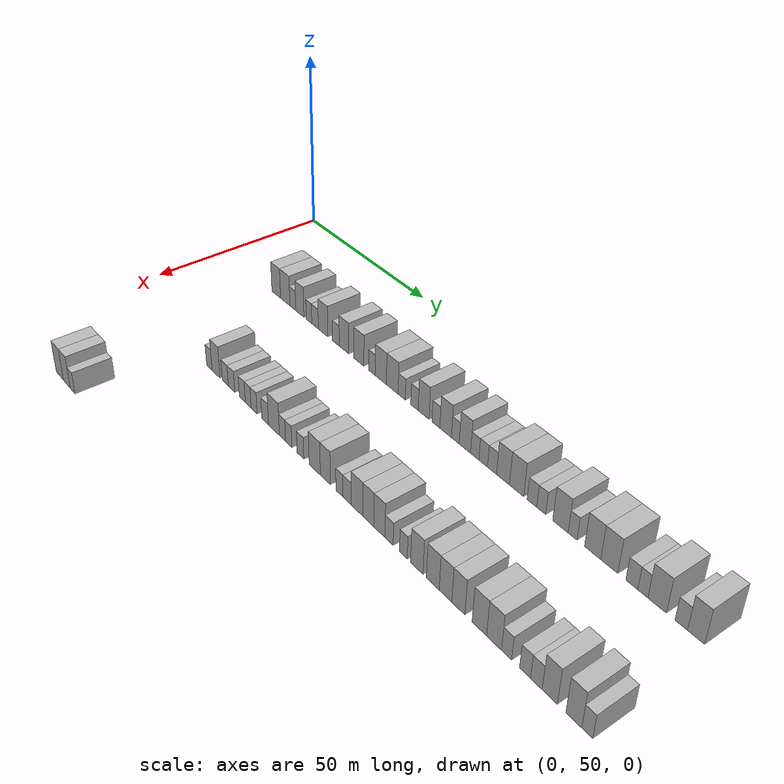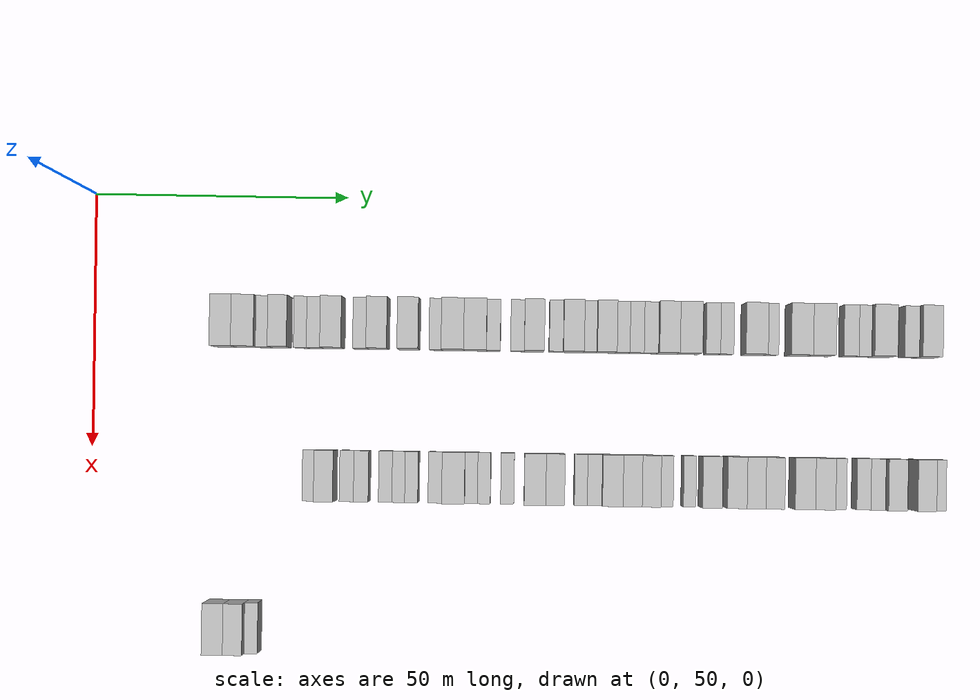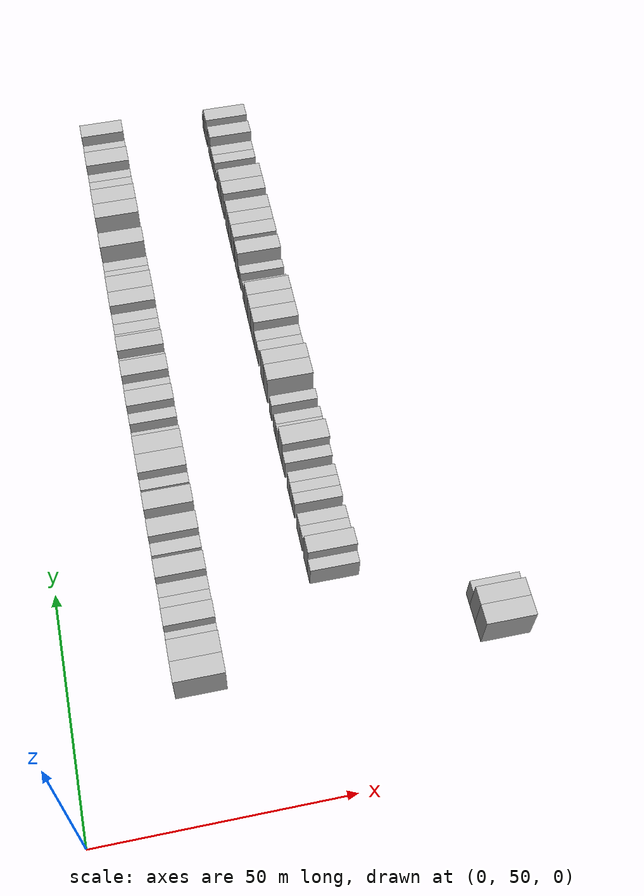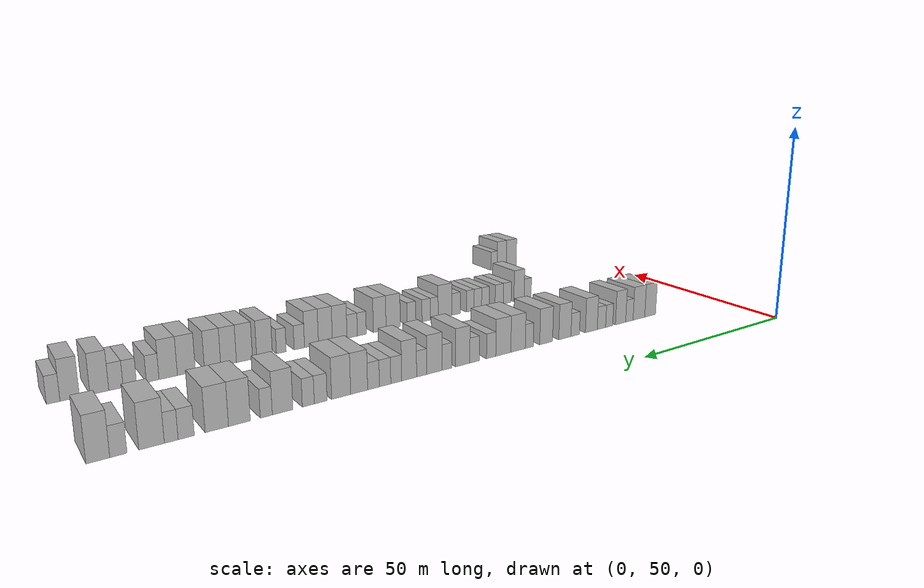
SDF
<sdf version="1.6">
 <world name="default">
  <model name="building_131">
   <static>1</static>
   <pose>25.0000 76.3426 0 0.000000 0.000000 0.000000</pose>
   <link name="link">
    <pose>0 0 4.50 0 0 0</pose>
    <collision name="collision"><geometry><box><size>10.0000 4.1590 9.0000</size></box></geometry></collision>
    <visual name="visual">
     <cast_shadows>0</cast_shadows>
     <geometry><box><size>10.0000 4.1590 9.0000</size></box></geometry>
     <material>
      <script>
       <uri>model://HANNAS_wall/materials/scripts</uri>
       <uri>model://HANNAS_wall/materials/textures</uri>
       <name>vrc/HANNAS_wall</name>
      </script>
     </material>
    </visual>
   </link>
  </model>
  <model name="building_132">
   <static>1</static>
   <pose>25.0000 80.6179 0 0.000000 0.000000 0.000000</pose>
   <link name="link">
    <pose>0 0 4.50 0 0 0</pose>
    <collision name="collision"><geometry><box><size>10.0000 4.3915 9.0000</size></box></geometry></collision>
    <visual name="visual">
     <cast_shadows>0</cast_shadows>
     <geometry><box><size>10.0000 4.3915 9.0000</size></box></geometry>
     <material>
      <script>
       <uri>model://HANNAS_wall/materials/scripts</uri>
       <uri>model://HANNAS_wall/materials/textures</uri>
       <name>vrc/HANNAS_wall</name>
      </script>
     </material>
    </visual>
   </link>
  </model>
  <model name="building_133">
   <static>1</static>
   <pose>25.0000 84.1657 0 0.000000 0.000000 0.000000</pose>
   <link name="link">
    <pose>0 0 3.00 0 0 0</pose>
    <collision name="collision"><geometry><box><size>10.0000 2.7042 6.0000</size></box></geometry></collision>
    <visual name="visual">
     <cast_shadows>0</cast_shadows>
     <geometry><box><size>10.0000 2.7042 6.0000</size></box></geometry>
     <material>
      <script>
       <uri>model://HANNAS_wall/materials/scripts</uri>
       <uri>model://HANNAS_wall/materials/textures</uri>
       <name>vrc/HANNAS_wall</name>
      </script>
     </material>
    </visual>
   </link>
  </model>
  <model name="building_134">
   <static>1</static>
   <pose>25.0000 87.3751 0 0.000000 0.000000 0.000000</pose>
   <link name="link">
    <pose>0 0 4.50 0 0 0</pose>
    <collision name="collision"><geometry><box><size>10.0000 3.7146 9.0000</size></box></geometry></collision>
    <visual name="visual">
     <cast_shadows>0</cast_shadows>
     <geometry><box><size>10.0000 3.7146 9.0000</size></box></geometry>
     <material>
      <script>
       <uri>model://HANNAS_wall/materials/scripts</uri>
       <uri>model://HANNAS_wall/materials/textures</uri>
       <name>vrc/HANNAS_wall</name>
      </script>
     </material>
    </visual>
   </link>
  </model>
  <model name="building_135">
   <static>1</static>
   <pose>25.0000 91.4889 0 0.000000 0.000000 0.000000</pose>
   <link name="link">
    <pose>0 0 3.00 0 0 0</pose>
    <collision name="collision"><geometry><box><size>10.0000 2.5130 6.0000</size></box></geometry></collision>
    <visual name="visual">
     <cast_shadows>0</cast_shadows>
     <geometry><box><size>10.0000 2.5130 6.0000</size></box></geometry>
     <material>
      <script>
       <uri>model://HANNAS_wall/materials/scripts</uri>
       <uri>model://HANNAS_wall/materials/textures</uri>
       <name>vrc/HANNAS_wall</name>
      </script>
     </material>
    </visual>
   </link>
  </model>
  <model name="building_136">
   <static>1</static>
   <pose>25.0000 94.2126 0 0.000000 0.000000 0.000000</pose>
   <link name="link">
    <pose>0 0 3.00 0 0 0</pose>
    <collision name="collision"><geometry><box><size>10.0000 2.9344 6.0000</size></box></geometry></collision>
    <visual name="visual">
     <cast_shadows>0</cast_shadows>
     <geometry><box><size>10.0000 2.9344 6.0000</size></box></geometry>
     <material>
      <script>
       <uri>model://HANNAS_wall/materials/scripts</uri>
       <uri>model://HANNAS_wall/materials/textures</uri>
       <name>vrc/HANNAS_wall</name>
      </script>
     </material>
    </visual>
   </link>
  </model>
  <model name="building_137">
   <static>1</static>
   <pose>25.0000 97.7253 0 0.000000 0.000000 0.000000</pose>
   <link name="link">
    <pose>0 0 4.50 0 0 0</pose>
    <collision name="collision"><geometry><box><size>10.0000 4.0909 9.0000</size></box></geometry></collision>
    <visual name="visual">
     <cast_shadows>0</cast_shadows>
     <geometry><box><size>10.0000 4.0909 9.0000</size></box></geometry>
     <material>
      <script>
       <uri>model://HANNAS_wall/materials/scripts</uri>
       <uri>model://HANNAS_wall/materials/textures</uri>
       <name>vrc/HANNAS_wall</name>
      </script>
     </material>
    </visual>
   </link>
  </model>
  <model name="building_138">
   <static>1</static>
   <pose>25.0000 103.1908 0 0.000000 0.000000 0.000000</pose>
   <link name="link">
    <pose>0 0 3.00 0 0 0</pose>
    <collision name="collision"><geometry><box><size>10.0000 2.8401 6.0000</size></box></geometry></collision>
    <visual name="visual">
     <cast_shadows>0</cast_shadows>
     <geometry><box><size>10.0000 2.8401 6.0000</size></box></geometry>
     <material>
      <script>
       <uri>model://HANNAS_wall/materials/scripts</uri>
       <uri>model://HANNAS_wall/materials/textures</uri>
       <name>vrc/HANNAS_wall</name>
      </script>
     </material>
    </visual>
   </link>
  </model>
  <model name="building_139">
   <static>1</static>
   <pose>25.0000 106.6107 0 0.000000 0.000000 0.000000</pose>
   <link name="link">
    <pose>0 0 4.50 0 0 0</pose>
    <collision name="collision"><geometry><box><size>10.0000 3.9996 9.0000</size></box></geometry></collision>
    <visual name="visual">
     <cast_shadows>0</cast_shadows>
     <geometry><box><size>10.0000 3.9996 9.0000</size></box></geometry>
     <material>
      <script>
       <uri>model://HANNAS_wall/materials/scripts</uri>
       <uri>model://HANNAS_wall/materials/textures</uri>
       <name>vrc/HANNAS_wall</name>
      </script>
     </material>
    </visual>
   </link>
  </model>
  <model name="building_140">
   <static>1</static>
   <pose>25.0000 112.6483 0 0.000000 0.000000 0.000000</pose>
   <link name="link">
    <pose>0 0 4.50 0 0 0</pose>
    <collision name="collision"><geometry><box><size>10.0000 4.0755 9.0000</size></box></geometry></collision>
    <visual name="visual">
     <cast_shadows>0</cast_shadows>
     <geometry><box><size>10.0000 4.0755 9.0000</size></box></geometry>
     <material>
      <script>
       <uri>model://HANNAS_wall/materials/scripts</uri>
       <uri>model://HANNAS_wall/materials/textures</uri>
       <name>vrc/HANNAS_wall</name>
      </script>
     </material>
    </visual>
   </link>
  </model>
  <model name="building_141">
   <static>1</static>
   <pose>25.0000 117.9227 0 0.000000 0.000000 0.000000</pose>
   <link name="link">
    <pose>0 0 3.00 0 0 0</pose>
    <collision name="collision"><geometry><box><size>10.0000 2.4732 6.0000</size></box></geometry></collision>
    <visual name="visual">
     <cast_shadows>0</cast_shadows>
     <geometry><box><size>10.0000 2.4732 6.0000</size></box></geometry>
     <material>
      <script>
       <uri>model://HANNAS_wall/materials/scripts</uri>
       <uri>model://HANNAS_wall/materials/textures</uri>
       <name>vrc/HANNAS_wall</name>
      </script>
     </material>
    </visual>
   </link>
  </model>
  <model name="building_142">
   <static>1</static>
   <pose>25.0000 121.3444 0 0.000000 0.000000 0.000000</pose>
   <link name="link">
    <pose>0 0 4.50 0 0 0</pose>
    <collision name="collision"><geometry><box><size>10.0000 4.3702 9.0000</size></box></geometry></collision>
    <visual name="visual">
     <cast_shadows>0</cast_shadows>
     <geometry><box><size>10.0000 4.3702 9.0000</size></box></geometry>
     <material>
      <script>
       <uri>model://HANNAS_wall/materials/scripts</uri>
       <uri>model://HANNAS_wall/materials/textures</uri>
       <name>vrc/HANNAS_wall</name>
      </script>
     </material>
    </visual>
   </link>
  </model>
  <model name="building_143">
   <static>1</static>
   <pose>25.0000 125.7376 0 0.000000 0.000000 0.000000</pose>
   <link name="link">
    <pose>0 0 4.50 0 0 0</pose>
    <collision name="collision"><geometry><box><size>10.0000 4.4163 9.0000</size></box></geometry></collision>
    <visual name="visual">
     <cast_shadows>0</cast_shadows>
     <geometry><box><size>10.0000 4.4163 9.0000</size></box></geometry>
     <material>
      <script>
       <uri>model://HANNAS_wall/materials/scripts</uri>
       <uri>model://HANNAS_wall/materials/textures</uri>
       <name>vrc/HANNAS_wall</name>
      </script>
     </material>
    </visual>
   </link>
  </model>
  <model name="building_144">
   <static>1</static>
   <pose>25.0000 129.2786 0 0.000000 0.000000 0.000000</pose>
   <link name="link">
    <pose>0 0 3.00 0 0 0</pose>
    <collision name="collision"><geometry><box><size>10.0000 2.6656 6.0000</size></box></geometry></collision>
    <visual name="visual">
     <cast_shadows>0</cast_shadows>
     <geometry><box><size>10.0000 2.6656 6.0000</size></box></geometry>
     <material>
      <script>
       <uri>model://HANNAS_wall/materials/scripts</uri>
       <uri>model://HANNAS_wall/materials/textures</uri>
       <name>vrc/HANNAS_wall</name>
      </script>
     </material>
    </visual>
   </link>
  </model>
  <model name="building_145">
   <static>1</static>
   <pose>25.0000 133.9656 0 0.000000 0.000000 0.000000</pose>
   <link name="link">
    <pose>0 0 3.00 0 0 0</pose>
    <collision name="collision"><geometry><box><size>10.0000 2.7083 6.0000</size></box></geometry></collision>
    <visual name="visual">
     <cast_shadows>0</cast_shadows>
     <geometry><box><size>10.0000 2.7083 6.0000</size></box></geometry>
     <material>
      <script>
       <uri>model://HANNAS_wall/materials/scripts</uri>
       <uri>model://HANNAS_wall/materials/textures</uri>
       <name>vrc/HANNAS_wall</name>
      </script>
     </material>
    </visual>
   </link>
  </model>
  <model name="building_146">
   <static>1</static>
   <pose>25.0000 137.2562 0 0.000000 0.000000 0.000000</pose>
   <link name="link">
    <pose>0 0 4.50 0 0 0</pose>
    <collision name="collision"><geometry><box><size>10.0000 3.8730 9.0000</size></box></geometry></collision>
    <visual name="visual">
     <cast_shadows>0</cast_shadows>
     <geometry><box><size>10.0000 3.8730 9.0000</size></box></geometry>
     <material>
      <script>
       <uri>model://HANNAS_wall/materials/scripts</uri>
       <uri>model://HANNAS_wall/materials/textures</uri>
       <name>vrc/HANNAS_wall</name>
      </script>
     </material>
    </visual>
   </link>
  </model>
  <model name="building_147">
   <static>1</static>
   <pose>25.0000 141.5552 0 0.000000 0.000000 0.000000</pose>
   <link name="link">
    <pose>0 0 3.00 0 0 0</pose>
    <collision name="collision"><geometry><box><size>10.0000 2.7249 6.0000</size></box></geometry></collision>
    <visual name="visual">
     <cast_shadows>0</cast_shadows>
     <geometry><box><size>10.0000 2.7249 6.0000</size></box></geometry>
     <material>
      <script>
       <uri>model://HANNAS_wall/materials/scripts</uri>
       <uri>model://HANNAS_wall/materials/textures</uri>
       <name>vrc/HANNAS_wall</name>
      </script>
     </material>
    </visual>
   </link>
  </model>
  <model name="building_148">
   <static>1</static>
   <pose>25.0000 144.9203 0 0.000000 0.000000 0.000000</pose>
   <link name="link">
    <pose>0 0 4.50 0 0 0</pose>
    <collision name="collision"><geometry><box><size>10.0000 4.0053 9.0000</size></box></geometry></collision>
    <visual name="visual">
     <cast_shadows>0</cast_shadows>
     <geometry><box><size>10.0000 4.0053 9.0000</size></box></geometry>
     <material>
      <script>
       <uri>model://HANNAS_wall/materials/scripts</uri>
       <uri>model://HANNAS_wall/materials/textures</uri>
       <name>vrc/HANNAS_wall</name>
      </script>
     </material>
    </visual>
   </link>
  </model>
  <model name="building_149">
   <static>1</static>
   <pose>25.0000 148.2048 0 0.000000 0.000000 0.000000</pose>
   <link name="link">
    <pose>0 0 3.00 0 0 0</pose>
    <collision name="collision"><geometry><box><size>10.0000 2.5637 6.0000</size></box></geometry></collision>
    <visual name="visual">
     <cast_shadows>0</cast_shadows>
     <geometry><box><size>10.0000 2.5637 6.0000</size></box></geometry>
     <material>
      <script>
       <uri>model://HANNAS_wall/materials/scripts</uri>
       <uri>model://HANNAS_wall/materials/textures</uri>
       <name>vrc/HANNAS_wall</name>
      </script>
     </material>
    </visual>
   </link>
  </model>
  <model name="building_150">
   <static>1</static>
   <pose>25.0000 151.3825 0 0.000000 0.000000 0.000000</pose>
   <link name="link">
    <pose>0 0 4.50 0 0 0</pose>
    <collision name="collision"><geometry><box><size>10.0000 3.7917 9.0000</size></box></geometry></collision>
    <visual name="visual">
     <cast_shadows>0</cast_shadows>
     <geometry><box><size>10.0000 3.7917 9.0000</size></box></geometry>
     <material>
      <script>
       <uri>model://HANNAS_wall/materials/scripts</uri>
       <uri>model://HANNAS_wall/materials/textures</uri>
       <name>vrc/HANNAS_wall</name>
      </script>
     </material>
    </visual>
   </link>
  </model>
  <model name="building_151">
   <static>1</static>
   <pose>25.0000 154.6120 0 0.000000 0.000000 0.000000</pose>
   <link name="link">
    <pose>0 0 3.00 0 0 0</pose>
    <collision name="collision"><geometry><box><size>10.0000 2.6673 6.0000</size></box></geometry></collision>
    <visual name="visual">
     <cast_shadows>0</cast_shadows>
     <geometry><box><size>10.0000 2.6673 6.0000</size></box></geometry>
     <material>
      <script>
       <uri>model://HANNAS_wall/materials/scripts</uri>
       <uri>model://HANNAS_wall/materials/textures</uri>
       <name>vrc/HANNAS_wall</name>
      </script>
     </material>
    </visual>
   </link>
  </model>
  <model name="building_152">
   <static>1</static>
   <pose>25.0000 157.3313 0 0.000000 0.000000 0.000000</pose>
   <link name="link">
    <pose>0 0 3.00 0 0 0</pose>
    <collision name="collision"><geometry><box><size>10.0000 2.7714 6.0000</size></box></geometry></collision>
    <visual name="visual">
     <cast_shadows>0</cast_shadows>
     <geometry><box><size>10.0000 2.7714 6.0000</size></box></geometry>
     <material>
      <script>
       <uri>model://HANNAS_wall/materials/scripts</uri>
       <uri>model://HANNAS_wall/materials/textures</uri>
       <name>vrc/HANNAS_wall</name>
      </script>
     </material>
    </visual>
   </link>
  </model>
  <model name="building_153">
   <static>1</static>
   <pose>25.0000 160.1201 0 0.000000 0.000000 0.000000</pose>
   <link name="link">
    <pose>0 0 3.00 0 0 0</pose>
    <collision name="collision"><geometry><box><size>10.0000 2.8062 6.0000</size></box></geometry></collision>
    <visual name="visual">
     <cast_shadows>0</cast_shadows>
     <geometry><box><size>10.0000 2.8062 6.0000</size></box></geometry>
     <material>
      <script>
       <uri>model://HANNAS_wall/materials/scripts</uri>
       <uri>model://HANNAS_wall/materials/textures</uri>
       <name>vrc/HANNAS_wall</name>
      </script>
     </material>
    </visual>
   </link>
  </model>
  <model name="building_154">
   <static>1</static>
   <pose>25.0000 163.5024 0 0.000000 0.000000 0.000000</pose>
   <link name="link">
    <pose>0 0 4.50 0 0 0</pose>
    <collision name="collision"><geometry><box><size>10.0000 3.9583 9.0000</size></box></geometry></collision>
    <visual name="visual">
     <cast_shadows>0</cast_shadows>
     <geometry><box><size>10.0000 3.9583 9.0000</size></box></geometry>
     <material>
      <script>
       <uri>model://HANNAS_wall/materials/scripts</uri>
       <uri>model://HANNAS_wall/materials/textures</uri>
       <name>vrc/HANNAS_wall</name>
      </script>
     </material>
    </visual>
   </link>
  </model>
  <model name="building_155">
   <static>1</static>
   <pose>25.0000 167.6439 0 0.000000 0.000000 0.000000</pose>
   <link name="link">
    <pose>0 0 4.50 0 0 0</pose>
    <collision name="collision"><geometry><box><size>10.0000 4.3248 9.0000</size></box></geometry></collision>
    <visual name="visual">
     <cast_shadows>0</cast_shadows>
     <geometry><box><size>10.0000 4.3248 9.0000</size></box></geometry>
     <material>
      <script>
       <uri>model://HANNAS_wall/materials/scripts</uri>
       <uri>model://HANNAS_wall/materials/textures</uri>
       <name>vrc/HANNAS_wall</name>
      </script>
     </material>
    </visual>
   </link>
  </model>
  <model name="building_156">
   <static>1</static>
   <pose>25.0000 172.2209 0 0.000000 0.000000 0.000000</pose>
   <link name="link">
    <pose>0 0 3.00 0 0 0</pose>
    <collision name="collision"><geometry><box><size>10.0000 2.8291 6.0000</size></box></geometry></collision>
    <visual name="visual">
     <cast_shadows>0</cast_shadows>
     <geometry><box><size>10.0000 2.8291 6.0000</size></box></geometry>
     <material>
      <script>
       <uri>model://HANNAS_wall/materials/scripts</uri>
       <uri>model://HANNAS_wall/materials/textures</uri>
       <name>vrc/HANNAS_wall</name>
      </script>
     </material>
    </visual>
   </link>
  </model>
  <model name="building_157">
   <static>1</static>
   <pose>25.0000 174.9240 0 0.000000 0.000000 0.000000</pose>
   <link name="link">
    <pose>0 0 3.00 0 0 0</pose>
    <collision name="collision"><geometry><box><size>10.0000 2.5772 6.0000</size></box></geometry></collision>
    <visual name="visual">
     <cast_shadows>0</cast_shadows>
     <geometry><box><size>10.0000 2.5772 6.0000</size></box></geometry>
     <material>
      <script>
       <uri>model://HANNAS_wall/materials/scripts</uri>
       <uri>model://HANNAS_wall/materials/textures</uri>
       <name>vrc/HANNAS_wall</name>
      </script>
     </material>
    </visual>
   </link>
  </model>
  <model name="building_158">
   <static>1</static>
   <pose>25.0000 180.3643 0 0.000000 0.000000 0.000000</pose>
   <link name="link">
    <pose>0 0 4.50 0 0 0</pose>
    <collision name="collision"><geometry><box><size>10.0000 4.3033 9.0000</size></box></geometry></collision>
    <visual name="visual">
     <cast_shadows>0</cast_shadows>
     <geometry><box><size>10.0000 4.3033 9.0000</size></box></geometry>
     <material>
      <script>
       <uri>model://HANNAS_wall/materials/scripts</uri>
       <uri>model://HANNAS_wall/materials/textures</uri>
       <name>vrc/HANNAS_wall</name>
      </script>
     </material>
    </visual>
   </link>
  </model>
  <model name="building_159">
   <static>1</static>
   <pose>25.0000 183.7414 0 0.000000 0.000000 0.000000</pose>
   <link name="link">
    <pose>0 0 3.00 0 0 0</pose>
    <collision name="collision"><geometry><box><size>10.0000 2.4510 6.0000</size></box></geometry></collision>
    <visual name="visual">
     <cast_shadows>0</cast_shadows>
     <geometry><box><size>10.0000 2.4510 6.0000</size></box></geometry>
     <material>
      <script>
       <uri>model://HANNAS_wall/materials/scripts</uri>
       <uri>model://HANNAS_wall/materials/textures</uri>
       <name>vrc/HANNAS_wall</name>
      </script>
     </material>
    </visual>
   </link>
  </model>
  <model name="building_160">
   <static>1</static>
   <pose>25.0000 189.1070 0 0.000000 0.000000 0.000000</pose>
   <link name="link">
    <pose>0 0 4.50 0 0 0</pose>
    <collision name="collision"><geometry><box><size>10.0000 4.2801 9.0000</size></box></geometry></collision>
    <visual name="visual">
     <cast_shadows>0</cast_shadows>
     <geometry><box><size>10.0000 4.2801 9.0000</size></box></geometry>
     <material>
      <script>
       <uri>model://HANNAS_wall/materials/scripts</uri>
       <uri>model://HANNAS_wall/materials/textures</uri>
       <name>vrc/HANNAS_wall</name>
      </script>
     </material>
    </visual>
   </link>
  </model>
  <model name="building_161">
   <static>1</static>
   <pose>25.0000 193.4655 0 0.000000 0.000000 0.000000</pose>
   <link name="link">
    <pose>0 0 4.50 0 0 0</pose>
    <collision name="collision"><geometry><box><size>10.0000 4.4369 9.0000</size></box></geometry></collision>
    <visual name="visual">
     <cast_shadows>0</cast_shadows>
     <geometry><box><size>10.0000 4.4369 9.0000</size></box></geometry>
     <material>
      <script>
       <uri>model://HANNAS_wall/materials/scripts</uri>
       <uri>model://HANNAS_wall/materials/textures</uri>
       <name>vrc/HANNAS_wall</name>
      </script>
     </material>
    </visual>
   </link>
  </model>
  <model name="building_162">
   <static>1</static>
   <pose>25.0000 199.1636 0 0.000000 0.000000 0.000000</pose>
   <link name="link">
    <pose>0 0 3.00 0 0 0</pose>
    <collision name="collision"><geometry><box><size>10.0000 2.9592 6.0000</size></box></geometry></collision>
    <visual name="visual">
     <cast_shadows>0</cast_shadows>
     <geometry><box><size>10.0000 2.9592 6.0000</size></box></geometry>
     <material>
      <script>
       <uri>model://HANNAS_wall/materials/scripts</uri>
       <uri>model://HANNAS_wall/materials/textures</uri>
       <name>vrc/HANNAS_wall</name>
      </script>
     </material>
    </visual>
   </link>
  </model>
  <model name="building_163">
   <static>1</static>
   <pose>25.0000 201.8750 0 0.000000 0.000000 0.000000</pose>
   <link name="link">
    <pose>0 0 3.00 0 0 0</pose>
    <collision name="collision"><geometry><box><size>10.0000 2.4637 6.0000</size></box></geometry></collision>
    <visual name="visual">
     <cast_shadows>0</cast_shadows>
     <geometry><box><size>10.0000 2.4637 6.0000</size></box></geometry>
     <material>
      <script>
       <uri>model://HANNAS_wall/materials/scripts</uri>
       <uri>model://HANNAS_wall/materials/textures</uri>
       <name>vrc/HANNAS_wall</name>
      </script>
     </material>
    </visual>
   </link>
  </model>
  <model name="building_164">
   <static>1</static>
   <pose>25.0000 205.3307 0 0.000000 0.000000 0.000000</pose>
   <link name="link">
    <pose>0 0 4.50 0 0 0</pose>
    <collision name="collision"><geometry><box><size>10.0000 4.4476 9.0000</size></box></geometry></collision>
    <visual name="visual">
     <cast_shadows>0</cast_shadows>
     <geometry><box><size>10.0000 4.4476 9.0000</size></box></geometry>
     <material>
      <script>
       <uri>model://HANNAS_wall/materials/scripts</uri>
       <uri>model://HANNAS_wall/materials/textures</uri>
       <name>vrc/HANNAS_wall</name>
      </script>
     </material>
    </visual>
   </link>
  </model>
  <model name="building_165">
   <static>1</static>
   <pose>25.0000 210.9926 0 0.000000 0.000000 0.000000</pose>
   <link name="link">
    <pose>0 0 3.00 0 0 0</pose>
    <collision name="collision"><geometry><box><size>10.0000 2.8762 6.0000</size></box></geometry></collision>
    <visual name="visual">
     <cast_shadows>0</cast_shadows>
     <geometry><box><size>10.0000 2.8762 6.0000</size></box></geometry>
     <material>
      <script>
       <uri>model://HANNAS_wall/materials/scripts</uri>
       <uri>model://HANNAS_wall/materials/textures</uri>
       <name>vrc/HANNAS_wall</name>
      </script>
     </material>
    </visual>
   </link>
  </model>
  <model name="building_166">
   <static>1</static>
   <pose>25.0000 214.3761 0 0.000000 0.000000 0.000000</pose>
   <link name="link">
    <pose>0 0 4.50 0 0 0</pose>
    <collision name="collision"><geometry><box><size>10.0000 3.8909 9.0000</size></box></geometry></collision>
    <visual name="visual">
     <cast_shadows>0</cast_shadows>
     <geometry><box><size>10.0000 3.8909 9.0000</size></box></geometry>
     <material>
      <script>
       <uri>model://HANNAS_wall/materials/scripts</uri>
       <uri>model://HANNAS_wall/materials/textures</uri>
       <name>vrc/HANNAS_wall</name>
      </script>
     </material>
    </visual>
   </link>
  </model>
  <model name="building_361">
   <static>1</static>
   <pose>55.0000 93.6541 0 0.000000 0.000000 0.000000</pose>
   <link name="link">
    <pose>0 0 3.00 0 0 0</pose>
    <collision name="collision"><geometry><box><size>10.0000 2.5620 6.0000</size></box></geometry></collision>
    <visual name="visual">
     <cast_shadows>0</cast_shadows>
     <geometry><box><size>10.0000 2.5620 6.0000</size></box></geometry>
     <material>
      <script>
       <uri>model://HANNAS_wall/materials/scripts</uri>
       <uri>model://HANNAS_wall/materials/textures</uri>
       <name>vrc/HANNAS_wall</name>
      </script>
     </material>
    </visual>
   </link>
  </model>
  <model name="building_362">
   <static>1</static>
   <pose>55.0000 96.7875 0 0.000000 0.000000 0.000000</pose>
   <link name="link">
    <pose>0 0 4.50 0 0 0</pose>
    <collision name="collision"><geometry><box><size>10.0000 3.7048 9.0000</size></box></geometry></collision>
    <visual name="visual">
     <cast_shadows>0</cast_shadows>
     <geometry><box><size>10.0000 3.7048 9.0000</size></box></geometry>
     <material>
      <script>
       <uri>model://HANNAS_wall/materials/scripts</uri>
       <uri>model://HANNAS_wall/materials/textures</uri>
       <name>vrc/HANNAS_wall</name>
      </script>
     </material>
    </visual>
   </link>
  </model>
  <model name="building_363">
   <static>1</static>
   <pose>55.0000 101.0251 0 0.000000 0.000000 0.000000</pose>
   <link name="link">
    <pose>0 0 3.00 0 0 0</pose>
    <collision name="collision"><geometry><box><size>10.0000 2.7704 6.0000</size></box></geometry></collision>
    <visual name="visual">
     <cast_shadows>0</cast_shadows>
     <geometry><box><size>10.0000 2.7704 6.0000</size></box></geometry>
     <material>
      <script>
       <uri>model://HANNAS_wall/materials/scripts</uri>
       <uri>model://HANNAS_wall/materials/textures</uri>
       <name>vrc/HANNAS_wall</name>
      </script>
     </material>
    </visual>
   </link>
  </model>
  <model name="building_364">
   <static>1</static>
   <pose>55.0000 103.8466 0 0.000000 0.000000 0.000000</pose>
   <link name="link">
    <pose>0 0 3.00 0 0 0</pose>
    <collision name="collision"><geometry><box><size>10.0000 2.8725 6.0000</size></box></geometry></collision>
    <visual name="visual">
     <cast_shadows>0</cast_shadows>
     <geometry><box><size>10.0000 2.8725 6.0000</size></box></geometry>
     <material>
      <script>
       <uri>model://HANNAS_wall/materials/scripts</uri>
       <uri>model://HANNAS_wall/materials/textures</uri>
       <name>vrc/HANNAS_wall</name>
      </script>
     </material>
    </visual>
   </link>
  </model>
  <model name="building_365">
   <static>1</static>
   <pose>55.0000 108.5972 0 0.000000 0.000000 0.000000</pose>
   <link name="link">
    <pose>0 0 3.00 0 0 0</pose>
    <collision name="collision"><geometry><box><size>10.0000 2.6288 6.0000</size></box></geometry></collision>
    <visual name="visual">
     <cast_shadows>0</cast_shadows>
     <geometry><box><size>10.0000 2.6288 6.0000</size></box></geometry>
     <material>
      <script>
       <uri>model://HANNAS_wall/materials/scripts</uri>
       <uri>model://HANNAS_wall/materials/textures</uri>
       <name>vrc/HANNAS_wall</name>
      </script>
     </material>
    </visual>
   </link>
  </model>
  <model name="building_366">
   <static>1</static>
   <pose>55.0000 111.1646 0 0.000000 0.000000 0.000000</pose>
   <link name="link">
    <pose>0 0 3.00 0 0 0</pose>
    <collision name="collision"><geometry><box><size>10.0000 2.5060 6.0000</size></box></geometry></collision>
    <visual name="visual">
     <cast_shadows>0</cast_shadows>
     <geometry><box><size>10.0000 2.5060 6.0000</size></box></geometry>
     <material>
      <script>
       <uri>model://HANNAS_wall/materials/scripts</uri>
       <uri>model://HANNAS_wall/materials/textures</uri>
       <name>vrc/HANNAS_wall</name>
      </script>
     </material>
    </visual>
   </link>
  </model>
  <model name="building_367">
   <static>1</static>
   <pose>55.0000 113.6902 0 0.000000 0.000000 0.000000</pose>
   <link name="link">
    <pose>0 0 3.00 0 0 0</pose>
    <collision name="collision"><geometry><box><size>10.0000 2.5452 6.0000</size></box></geometry></collision>
    <visual name="visual">
     <cast_shadows>0</cast_shadows>
     <geometry><box><size>10.0000 2.5452 6.0000</size></box></geometry>
     <material>
      <script>
       <uri>model://HANNAS_wall/materials/scripts</uri>
       <uri>model://HANNAS_wall/materials/textures</uri>
       <name>vrc/HANNAS_wall</name>
      </script>
     </material>
    </visual>
   </link>
  </model>
  <model name="building_368">
   <static>1</static>
   <pose>55.0000 118.3507 0 0.000000 0.000000 0.000000</pose>
   <link name="link">
    <pose>0 0 3.00 0 0 0</pose>
    <collision name="collision"><geometry><box><size>10.0000 2.7758 6.0000</size></box></geometry></collision>
    <visual name="visual">
     <cast_shadows>0</cast_shadows>
     <geometry><box><size>10.0000 2.7758 6.0000</size></box></geometry>
     <material>
      <script>
       <uri>model://HANNAS_wall/materials/scripts</uri>
       <uri>model://HANNAS_wall/materials/textures</uri>
       <name>vrc/HANNAS_wall</name>
      </script>
     </material>
    </visual>
   </link>
  </model>
  <model name="building_369">
   <static>1</static>
   <pose>55.0000 121.9418 0 0.000000 0.000000 0.000000</pose>
   <link name="link">
    <pose>0 0 4.50 0 0 0</pose>
    <collision name="collision"><geometry><box><size>10.0000 4.4065 9.0000</size></box></geometry></collision>
    <visual name="visual">
     <cast_shadows>0</cast_shadows>
     <geometry><box><size>10.0000 4.4065 9.0000</size></box></geometry>
     <material>
      <script>
       <uri>model://HANNAS_wall/materials/scripts</uri>
       <uri>model://HANNAS_wall/materials/textures</uri>
       <name>vrc/HANNAS_wall</name>
      </script>
     </material>
    </visual>
   </link>
  </model>
  <model name="building_370">
   <static>1</static>
   <pose>55.0000 125.3711 0 0.000000 0.000000 0.000000</pose>
   <link name="link">
    <pose>0 0 3.00 0 0 0</pose>
    <collision name="collision"><geometry><box><size>10.0000 2.4519 6.0000</size></box></geometry></collision>
    <visual name="visual">
     <cast_shadows>0</cast_shadows>
     <geometry><box><size>10.0000 2.4519 6.0000</size></box></geometry>
     <material>
      <script>
       <uri>model://HANNAS_wall/materials/scripts</uri>
       <uri>model://HANNAS_wall/materials/textures</uri>
       <name>vrc/HANNAS_wall</name>
      </script>
     </material>
    </visual>
   </link>
  </model>
  <model name="building_371">
   <static>1</static>
   <pose>55.0000 127.8636 0 0.000000 0.000000 0.000000</pose>
   <link name="link">
    <pose>0 0 3.00 0 0 0</pose>
    <collision name="collision"><geometry><box><size>10.0000 2.5331 6.0000</size></box></geometry></collision>
    <visual name="visual">
     <cast_shadows>0</cast_shadows>
     <geometry><box><size>10.0000 2.5331 6.0000</size></box></geometry>
     <material>
      <script>
       <uri>model://HANNAS_wall/materials/scripts</uri>
       <uri>model://HANNAS_wall/materials/textures</uri>
       <name>vrc/HANNAS_wall</name>
      </script>
     </material>
    </visual>
   </link>
  </model>
  <model name="building_372">
   <static>1</static>
   <pose>55.0000 132.4296 0 0.000000 0.000000 0.000000</pose>
   <link name="link">
    <pose>0 0 3.00 0 0 0</pose>
    <collision name="collision"><geometry><box><size>10.0000 2.5991 6.0000</size></box></geometry></collision>
    <visual name="visual">
     <cast_shadows>0</cast_shadows>
     <geometry><box><size>10.0000 2.5991 6.0000</size></box></geometry>
     <material>
      <script>
       <uri>model://HANNAS_wall/materials/scripts</uri>
       <uri>model://HANNAS_wall/materials/textures</uri>
       <name>vrc/HANNAS_wall</name>
      </script>
     </material>
    </visual>
   </link>
  </model>
  <model name="building_373">
   <static>1</static>
   <pose>55.0000 137.8204 0 0.000000 0.000000 0.000000</pose>
   <link name="link">
    <pose>0 0 4.50 0 0 0</pose>
    <collision name="collision"><geometry><box><size>10.0000 4.1824 9.0000</size></box></geometry></collision>
    <visual name="visual">
     <cast_shadows>0</cast_shadows>
     <geometry><box><size>10.0000 4.1824 9.0000</size></box></geometry>
     <material>
      <script>
       <uri>model://HANNAS_wall/materials/scripts</uri>
       <uri>model://HANNAS_wall/materials/textures</uri>
       <name>vrc/HANNAS_wall</name>
      </script>
     </material>
    </visual>
   </link>
  </model>
  <model name="building_374">
   <static>1</static>
   <pose>55.0000 141.7358 0 0.000000 0.000000 0.000000</pose>
   <link name="link">
    <pose>0 0 4.50 0 0 0</pose>
    <collision name="collision"><geometry><box><size>10.0000 3.6483 9.0000</size></box></geometry></collision>
    <visual name="visual">
     <cast_shadows>0</cast_shadows>
     <geometry><box><size>10.0000 3.6483 9.0000</size></box></geometry>
     <material>
      <script>
       <uri>model://HANNAS_wall/materials/scripts</uri>
       <uri>model://HANNAS_wall/materials/textures</uri>
       <name>vrc/HANNAS_wall</name>
      </script>
     </material>
    </visual>
   </link>
  </model>
  <model name="building_375">
   <static>1</static>
   <pose>55.0000 146.8112 0 0.000000 0.000000 0.000000</pose>
   <link name="link">
    <pose>0 0 3.00 0 0 0</pose>
    <collision name="collision"><geometry><box><size>10.0000 2.5026 6.0000</size></box></geometry></collision>
    <visual name="visual">
     <cast_shadows>0</cast_shadows>
     <geometry><box><size>10.0000 2.5026 6.0000</size></box></geometry>
     <material>
      <script>
       <uri>model://HANNAS_wall/materials/scripts</uri>
       <uri>model://HANNAS_wall/materials/textures</uri>
       <name>vrc/HANNAS_wall</name>
      </script>
     </material>
    </visual>
   </link>
  </model>
  <model name="building_376">
   <static>1</static>
   <pose>55.0000 149.4881 0 0.000000 0.000000 0.000000</pose>
   <link name="link">
    <pose>0 0 3.00 0 0 0</pose>
    <collision name="collision"><geometry><box><size>10.0000 2.8512 6.0000</size></box></geometry></collision>
    <visual name="visual">
     <cast_shadows>0</cast_shadows>
     <geometry><box><size>10.0000 2.8512 6.0000</size></box></geometry>
     <material>
      <script>
       <uri>model://HANNAS_wall/materials/scripts</uri>
       <uri>model://HANNAS_wall/materials/textures</uri>
       <name>vrc/HANNAS_wall</name>
      </script>
     </material>
    </visual>
   </link>
  </model>
  <model name="building_377">
   <static>1</static>
   <pose>55.0000 152.8944 0 0.000000 0.000000 0.000000</pose>
   <link name="link">
    <pose>0 0 4.50 0 0 0</pose>
    <collision name="collision"><geometry><box><size>10.0000 3.9613 9.0000</size></box></geometry></collision>
    <visual name="visual">
     <cast_shadows>0</cast_shadows>
     <geometry><box><size>10.0000 3.9613 9.0000</size></box></geometry>
     <material>
      <script>
       <uri>model://HANNAS_wall/materials/scripts</uri>
       <uri>model://HANNAS_wall/materials/textures</uri>
       <name>vrc/HANNAS_wall</name>
      </script>
     </material>
    </visual>
   </link>
  </model>
  <model name="building_378">
   <static>1</static>
   <pose>55.0000 156.7268 0 0.000000 0.000000 0.000000</pose>
   <link name="link">
    <pose>0 0 4.50 0 0 0</pose>
    <collision name="collision"><geometry><box><size>10.0000 3.7036 9.0000</size></box></geometry></collision>
    <visual name="visual">
     <cast_shadows>0</cast_shadows>
     <geometry><box><size>10.0000 3.7036 9.0000</size></box></geometry>
     <material>
      <script>
       <uri>model://HANNAS_wall/materials/scripts</uri>
       <uri>model://HANNAS_wall/materials/textures</uri>
       <name>vrc/HANNAS_wall</name>
      </script>
     </material>
    </visual>
   </link>
  </model>
  <model name="building_379">
   <static>1</static>
   <pose>55.0000 160.3899 0 0.000000 0.000000 0.000000</pose>
   <link name="link">
    <pose>0 0 4.50 0 0 0</pose>
    <collision name="collision"><geometry><box><size>10.0000 3.6226 9.0000</size></box></geometry></collision>
    <visual name="visual">
     <cast_shadows>0</cast_shadows>
     <geometry><box><size>10.0000 3.6226 9.0000</size></box></geometry>
     <material>
      <script>
       <uri>model://HANNAS_wall/materials/scripts</uri>
       <uri>model://HANNAS_wall/materials/textures</uri>
       <name>vrc/HANNAS_wall</name>
      </script>
     </material>
    </visual>
   </link>
  </model>
  <model name="building_380">
   <static>1</static>
   <pose>55.0000 163.5206 0 0.000000 0.000000 0.000000</pose>
   <link name="link">
    <pose>0 0 3.00 0 0 0</pose>
    <collision name="collision"><geometry><box><size>10.0000 2.6387 6.0000</size></box></geometry></collision>
    <visual name="visual">
     <cast_shadows>0</cast_shadows>
     <geometry><box><size>10.0000 2.6387 6.0000</size></box></geometry>
     <material>
      <script>
       <uri>model://HANNAS_wall/materials/scripts</uri>
       <uri>model://HANNAS_wall/materials/textures</uri>
       <name>vrc/HANNAS_wall</name>
      </script>
     </material>
    </visual>
   </link>
  </model>
  <model name="building_381">
   <static>1</static>
   <pose>55.0000 168.0563 0 0.000000 0.000000 0.000000</pose>
   <link name="link">
    <pose>0 0 3.00 0 0 0</pose>
    <collision name="collision"><geometry><box><size>10.0000 2.4327 6.0000</size></box></geometry></collision>
    <visual name="visual">
     <cast_shadows>0</cast_shadows>
     <geometry><box><size>10.0000 2.4327 6.0000</size></box></geometry>
     <material>
      <script>
       <uri>model://HANNAS_wall/materials/scripts</uri>
       <uri>model://HANNAS_wall/materials/textures</uri>
       <name>vrc/HANNAS_wall</name>
      </script>
     </material>
    </visual>
   </link>
  </model>
  <model name="building_382">
   <static>1</static>
   <pose>55.0000 172.1798 0 0.000000 0.000000 0.000000</pose>
   <link name="link">
    <pose>0 0 4.50 0 0 0</pose>
    <collision name="collision"><geometry><box><size>10.0000 3.8143 9.0000</size></box></geometry></collision>
    <visual name="visual">
     <cast_shadows>0</cast_shadows>
     <geometry><box><size>10.0000 3.8143 9.0000</size></box></geometry>
     <material>
      <script>
       <uri>model://HANNAS_wall/materials/scripts</uri>
       <uri>model://HANNAS_wall/materials/textures</uri>
       <name>vrc/HANNAS_wall</name>
      </script>
     </material>
    </visual>
   </link>
  </model>
  <model name="building_383">
   <static>1</static>
   <pose>55.0000 176.9813 0 0.000000 0.000000 0.000000</pose>
   <link name="link">
    <pose>0 0 4.50 0 0 0</pose>
    <collision name="collision"><geometry><box><size>10.0000 3.7887 9.0000</size></box></geometry></collision>
    <visual name="visual">
     <cast_shadows>0</cast_shadows>
     <geometry><box><size>10.0000 3.7887 9.0000</size></box></geometry>
     <material>
      <script>
       <uri>model://HANNAS_wall/materials/scripts</uri>
       <uri>model://HANNAS_wall/materials/textures</uri>
       <name>vrc/HANNAS_wall</name>
      </script>
     </material>
    </visual>
   </link>
  </model>
  <model name="building_384">
   <static>1</static>
   <pose>55.0000 180.6871 0 0.000000 0.000000 0.000000</pose>
   <link name="link">
    <pose>0 0 4.50 0 0 0</pose>
    <collision name="collision"><geometry><box><size>10.0000 3.6231 9.0000</size></box></geometry></collision>
    <visual name="visual">
     <cast_shadows>0</cast_shadows>
     <geometry><box><size>10.0000 3.6231 9.0000</size></box></geometry>
     <material>
      <script>
       <uri>model://HANNAS_wall/materials/scripts</uri>
       <uri>model://HANNAS_wall/materials/textures</uri>
       <name>vrc/HANNAS_wall</name>
      </script>
     </material>
    </visual>
   </link>
  </model>
  <model name="building_385">
   <static>1</static>
   <pose>55.0000 184.3453 0 0.000000 0.000000 0.000000</pose>
   <link name="link">
    <pose>0 0 4.50 0 0 0</pose>
    <collision name="collision"><geometry><box><size>10.0000 3.6933 9.0000</size></box></geometry></collision>
    <visual name="visual">
     <cast_shadows>0</cast_shadows>
     <geometry><box><size>10.0000 3.6933 9.0000</size></box></geometry>
     <material>
      <script>
       <uri>model://HANNAS_wall/materials/scripts</uri>
       <uri>model://HANNAS_wall/materials/textures</uri>
       <name>vrc/HANNAS_wall</name>
      </script>
     </material>
    </visual>
   </link>
  </model>
  <model name="building_386">
   <static>1</static>
   <pose>55.0000 190.1558 0 0.000000 0.000000 0.000000</pose>
   <link name="link">
    <pose>0 0 4.50 0 0 0</pose>
    <collision name="collision"><geometry><box><size>10.0000 3.9277 9.0000</size></box></geometry></collision>
    <visual name="visual">
     <cast_shadows>0</cast_shadows>
     <geometry><box><size>10.0000 3.9277 9.0000</size></box></geometry>
     <material>
      <script>
       <uri>model://HANNAS_wall/materials/scripts</uri>
       <uri>model://HANNAS_wall/materials/textures</uri>
       <name>vrc/HANNAS_wall</name>
      </script>
     </material>
    </visual>
   </link>
  </model>
  <model name="building_387">
   <static>1</static>
   <pose>55.0000 194.0792 0 0.000000 0.000000 0.000000</pose>
   <link name="link">
    <pose>0 0 4.50 0 0 0</pose>
    <collision name="collision"><geometry><box><size>10.0000 3.9193 9.0000</size></box></geometry></collision>
    <visual name="visual">
     <cast_shadows>0</cast_shadows>
     <geometry><box><size>10.0000 3.9193 9.0000</size></box></geometry>
     <material>
      <script>
       <uri>model://HANNAS_wall/materials/scripts</uri>
       <uri>model://HANNAS_wall/materials/textures</uri>
       <name>vrc/HANNAS_wall</name>
      </script>
     </material>
    </visual>
   </link>
  </model>
  <model name="building_388">
   <static>1</static>
   <pose>55.0000 197.3543 0 0.000000 0.000000 0.000000</pose>
   <link name="link">
    <pose>0 0 3.00 0 0 0</pose>
    <collision name="collision"><geometry><box><size>10.0000 2.6309 6.0000</size></box></geometry></collision>
    <visual name="visual">
     <cast_shadows>0</cast_shadows>
     <geometry><box><size>10.0000 2.6309 6.0000</size></box></geometry>
     <material>
      <script>
       <uri>model://HANNAS_wall/materials/scripts</uri>
       <uri>model://HANNAS_wall/materials/textures</uri>
       <name>vrc/HANNAS_wall</name>
      </script>
     </material>
    </visual>
   </link>
  </model>
  <model name="building_389">
   <static>1</static>
   <pose>55.0000 202.0362 0 0.000000 0.000000 0.000000</pose>
   <link name="link">
    <pose>0 0 3.00 0 0 0</pose>
    <collision name="collision"><geometry><box><size>10.0000 2.7329 6.0000</size></box></geometry></collision>
    <visual name="visual">
     <cast_shadows>0</cast_shadows>
     <geometry><box><size>10.0000 2.7329 6.0000</size></box></geometry>
     <material>
      <script>
       <uri>model://HANNAS_wall/materials/scripts</uri>
       <uri>model://HANNAS_wall/materials/textures</uri>
       <name>vrc/HANNAS_wall</name>
      </script>
     </material>
    </visual>
   </link>
  </model>
  <model name="building_390">
   <static>1</static>
   <pose>55.0000 204.8294 0 0.000000 0.000000 0.000000</pose>
   <link name="link">
    <pose>0 0 3.00 0 0 0</pose>
    <collision name="collision"><geometry><box><size>10.0000 2.8535 6.0000</size></box></geometry></collision>
    <visual name="visual">
     <cast_shadows>0</cast_shadows>
     <geometry><box><size>10.0000 2.8535 6.0000</size></box></geometry>
     <material>
      <script>
       <uri>model://HANNAS_wall/materials/scripts</uri>
       <uri>model://HANNAS_wall/materials/textures</uri>
       <name>vrc/HANNAS_wall</name>
      </script>
     </material>
    </visual>
   </link>
  </model>
  <model name="building_391">
   <static>1</static>
   <pose>55.0000 208.0875 0 0.000000 0.000000 0.000000</pose>
   <link name="link">
    <pose>0 0 4.50 0 0 0</pose>
    <collision name="collision"><geometry><box><size>10.0000 3.6627 9.0000</size></box></geometry></collision>
    <visual name="visual">
     <cast_shadows>0</cast_shadows>
     <geometry><box><size>10.0000 3.6627 9.0000</size></box></geometry>
     <material>
      <script>
       <uri>model://HANNAS_wall/materials/scripts</uri>
       <uri>model://HANNAS_wall/materials/textures</uri>
       <name>vrc/HANNAS_wall</name>
      </script>
     </material>
    </visual>
   </link>
  </model>
  <model name="building_392">
   <static>1</static>
   <pose>55.0000 213.7462 0 0.000000 0.000000 0.000000</pose>
   <link name="link">
    <pose>0 0 4.50 0 0 0</pose>
    <collision name="collision"><geometry><box><size>10.0000 3.6546 9.0000</size></box></geometry></collision>
    <visual name="visual">
     <cast_shadows>0</cast_shadows>
     <geometry><box><size>10.0000 3.6546 9.0000</size></box></geometry>
     <material>
      <script>
       <uri>model://HANNAS_wall/materials/scripts</uri>
       <uri>model://HANNAS_wall/materials/textures</uri>
       <name>vrc/HANNAS_wall</name>
      </script>
     </material>
    </visual>
   </link>
  </model>
  <model name="building_393">
   <static>1</static>
   <pose>55.0000 216.8286 0 0.000000 0.000000 0.000000</pose>
   <link name="link">
    <pose>0 0 3.00 0 0 0</pose>
    <collision name="collision"><geometry><box><size>10.0000 2.5103 6.0000</size></box></geometry></collision>
    <visual name="visual">
     <cast_shadows>0</cast_shadows>
     <geometry><box><size>10.0000 2.5103 6.0000</size></box></geometry>
     <material>
      <script>
       <uri>model://HANNAS_wall/materials/scripts</uri>
       <uri>model://HANNAS_wall/materials/textures</uri>
       <name>vrc/HANNAS_wall</name>
      </script>
     </material>
    </visual>
   </link>
  </model>
  <model name="building_573">
   <static>1</static>
   <pose>85.0000 75.7532 0 0.000000 0.000000 0.000000</pose>
   <link name="link">
    <pose>0 0 4.50 0 0 0</pose>
    <collision name="collision"><geometry><box><size>10.0000 4.1096 9.0000</size></box></geometry></collision>
    <visual name="visual">
     <cast_shadows>0</cast_shadows>
     <geometry><box><size>10.0000 4.1096 9.0000</size></box></geometry>
     <material>
      <script>
       <uri>model://HANNAS_wall/materials/scripts</uri>
       <uri>model://HANNAS_wall/materials/textures</uri>
       <name>vrc/HANNAS_wall</name>
      </script>
     </material>
    </visual>
   </link>
  </model>
  <model name="building_574">
   <static>1</static>
   <pose>85.0000 79.6732 0 0.000000 0.000000 0.000000</pose>
   <link name="link">
    <pose>0 0 4.50 0 0 0</pose>
    <collision name="collision"><geometry><box><size>10.0000 3.7304 9.0000</size></box></geometry></collision>
    <visual name="visual">
     <cast_shadows>0</cast_shadows>
     <geometry><box><size>10.0000 3.7304 9.0000</size></box></geometry>
     <material>
      <script>
       <uri>model://HANNAS_wall/materials/scripts</uri>
       <uri>model://HANNAS_wall/materials/textures</uri>
       <name>vrc/HANNAS_wall</name>
      </script>
     </material>
    </visual>
   </link>
  </model>
  <model name="building_575">
   <static>1</static>
   <pose>85.0000 82.8282 0 0.000000 0.000000 0.000000</pose>
   <link name="link">
    <pose>0 0 3.00 0 0 0</pose>
    <collision name="collision"><geometry><box><size>10.0000 2.5796 6.0000</size></box></geometry></collision>
    <visual name="visual">
     <cast_shadows>0</cast_shadows>
     <geometry><box><size>10.0000 2.5796 6.0000</size></box></geometry>
     <material>
      <script>
       <uri>model://HANNAS_wall/materials/scripts</uri>
       <uri>model://HANNAS_wall/materials/textures</uri>
       <name>vrc/HANNAS_wall</name>
      </script>
     </material>
    </visual>
   </link>
  </model>
 </world>
</sdf>
